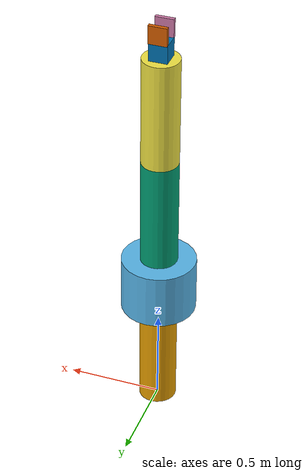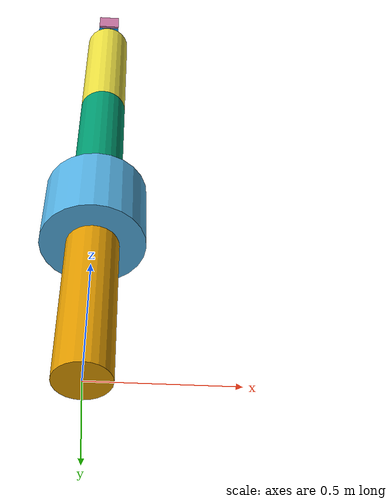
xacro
<?xml version="1.0"?>
<robot xmlns:xacro="http://www.ros.org/wiki/xacro" name="myfirst">
    <xacro:arg name="initial_positions_file" default="initial_positions.yaml" />

    <!-- Import myfirst urdf file -->
    <xacro:include filename="$(find ntust_robot_description)/urdf/urdf_test.urdf" />

    <!-- Import control_xacro -->
    <xacro:include filename="myfirst.ros2_control.xacro" />

    <xacro:myfirst_ros2_control name="FakeSystem" initial_positions_file="$(arg initial_positions_file)"/>

    <gazebo>
        <plugin filename="libgz_ros2_control-system.so"
        name="gz_ros2_control::GazeboSimROS2ControlPlugin">
        <parameters>$(find myfirst_moveit_config)/config/ros2_controllers.yaml</parameters>
        <controller_manager_name>controller_manager</controller_manager_name>
        </plugin>
    </gazebo>

</robot>

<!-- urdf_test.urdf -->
<robot name="myfirst">

  <!-- base -->
  <link name="base_link">
    <visual>
      <geometry>
        <cylinder length="0.6" radius="0.1"/>
      </geometry>
      <origin xyz="0 0 0.3" rpy="0 0 0"/>
    </visual>
    <collision>
      <geometry>
        <cylinder length="0.6" radius="0.1"/>
      </geometry>
      <origin xyz="0 0 0.3" rpy="0 0 0"/>
    </collision>
    <inertial>
      <origin xyz="0 0 0.3" rpy="0 0 0"/>
      <mass value="0.5"/>
      <inertia ixx="0.013" ixy="0" ixz="0"
              iyy="0.013" iyz="0"
              izz="0.005"/>
    </inertial>
  </link>

  <!-- link 1 -->
  <link name="link1">
    <visual>
      <geometry>
        <cylinder length="0.3" radius="0.2"/>
      </geometry>
      <origin xyz="0 0 0.15" rpy="0 0 0"/>
    </visual>
    <collision>
      <geometry>
        <cylinder length="0.3" radius="0.2"/>
      </geometry>
      <origin xyz="0 0 0.15" rpy="0 0 0"/>
    </collision>
    <inertial>
      <origin xyz="0 0 0.15" rpy="0 0 0"/>
      <mass value="0.4"/>
      <inertia ixx="0.008" ixy="0" ixz="0"
              iyy="0.008" iyz="0"
              izz="0.003"/>
    </inertial>
  </link>

  <!-- link 2 -->
  <link name="link2">
    <visual>
      <geometry>
        <cylinder length="0.6" radius="0.1"/>
      </geometry>
      <origin xyz="0 0 0.3" rpy="0 0 0"/>
    </visual>
    <collision>
      <geometry>
        <cylinder length="0.6" radius="0.1"/>
      </geometry>
      <origin xyz="0 0 0.3" rpy="0 0 0"/>
    </collision>
    <inertial>
      <origin xyz="0 0 0.3" rpy="0 0 0"/>
      <mass value="0.6"/>
      <inertia ixx="0.020" ixy="0" ixz="0"
              iyy="0.020" iyz="0"
              izz="0.006"/>
    </inertial>
  </link>

    <!-- link 3 -->
  <link name="link3">
    <visual>
      <geometry>
        <cylinder length="0.6" radius="0.1"/>
      </geometry>
      <origin xyz="0 0 0.3" rpy="0 0 0"/>
    </visual>
    <collision>
      <geometry>
        <cylinder length="0.6" radius="0.1"/>
      </geometry>
      <origin xyz="0 0 0.3" rpy="0 0 0"/>
    </collision>
    <inertial>
      <origin xyz="0 0 0.3" rpy="0 0 0"/>
      <mass value="0.6"/>
      <inertia ixx="0.020" ixy="0" ixz="0"
              iyy="0.020" iyz="0"
              izz="0.006"/>
    </inertial>
  </link>

  <!-- GRIPPER -->

<link name="gripper_base">
  <visual>
    <geometry>
      <box size="0.1 0.1 0.1"/>
    </geometry>
  </visual>
  <collision>
      <geometry>
        <box size="0.1 0.1 0.1"/>
      </geometry>
  </collision>
  <inertial>
    <origin xyz="0 0 0" rpy="0 0 0"/>
    <mass value="0.2"/>
    <inertia ixx="0.0003" ixy="0" ixz="0"
            iyy="0.0003" iyz="0"
            izz="0.0003"/>
  </inertial>
</link>

<link name="finger_left">
  <visual>
    <geometry>
      <box size="0.1 0.02 0.1"/>
    </geometry>
    <origin xyz="0 0 0.05" rpy="0 0 0"/>
  </visual>
  <collision>
      <geometry>
        <box size="0.1 0.02 0.1"/>
      </geometry>
      <origin xyz="0 0 0.05" rpy="0 0 0"/>
  </collision>
  <inertial>
    <origin xyz="0 0 0.05" rpy="0 0 0"/>
    <mass value="0.05"/>
    <inertia ixx="0.00001" ixy="0" ixz="0"
            iyy="0.00001" iyz="0"
            izz="0.00001"/>
  </inertial>
</link>

<link name="finger_right">
  <visual>
    <geometry>
      <box size="0.1 0.02 0.1"/>
    </geometry>
    <origin xyz="0 0 0.05" rpy="0 0 0"/>
  </visual>
  <collision>
      <geometry>
        <box size="0.1 0.02 0.1"/>
      </geometry>
      <origin xyz="0 0 0.05" rpy="0 0 0"/>
  </collision>
  <inertial>
    <origin xyz="0 0 0.05" rpy="0 0 0"/>
    <mass value="0.05"/>
    <inertia ixx="0.00001" ixy="0" ixz="0"
            iyy="0.00001" iyz="0"
            izz="0.00001"/>
  </inertial>
</link>

  <!-- joint 1 -->
  <joint name="joint1" type="revolute">
    <parent link="base_link"/>
    <child link="link1"/>
    <origin xyz="0 0 0.6" rpy="0 0 0"/>
    <axis xyz="0 0 1"/>
    <limit lower="-3.14" upper="3.14" effort="1" velocity="1"/>
  </joint>

  <!-- joint 2 -->
  <joint name="joint2" type="revolute">
    <parent link="link1"/>
    <child link="link2"/>
    <origin xyz="0 0 0.3" rpy="0 0 0"/>
    <axis xyz="0 1 0"/>
    <limit lower="-3.14" upper="3.14" effort="1" velocity="1"/>
  </joint>

  <!-- joint 3 -->
  <joint name="joint3" type="revolute">
    <parent link="link2"/>
    <child link="link3"/>
    <origin xyz="0 0 0.6" rpy="0 0 0"/>
    <axis xyz="0 1 0"/>
    <limit lower="-3.14" upper="3.14" effort="1" velocity="1"/>
  </joint>

  <!-- joint 4 -->
  <joint name="joint4" type="revolute">
  <parent link="link3"/>
  <child link="gripper_base"/>
  <origin xyz="0 0 0.65" rpy="0 0 0"/>
  <axis xyz="0 0 1"/>
  <limit lower="-3.14" upper="3.14" effort="1" velocity="1"/>
</joint>

  <joint name="finger_left_joint" type="prismatic">
    <parent link="gripper_base"/>
    <child link="finger_left"/>
    <origin xyz="0 0.05 0.05" rpy="0 0 0"/>
    <axis xyz="0 -1 0"/>
    <limit lower="0" upper="0.04" effort="1" velocity="1"/>
  </joint>

  <joint name="finger_right_joint" type="prismatic">
    <parent link="gripper_base"/>
    <child link="finger_right"/>
    <origin xyz="0 -0.05 0.05" rpy="0 0 0"/>
    <axis xyz="0 1 0"/>
    <limit lower="0" upper="0.04" effort="1" velocity="1"/>
  </joint>

</robot>
